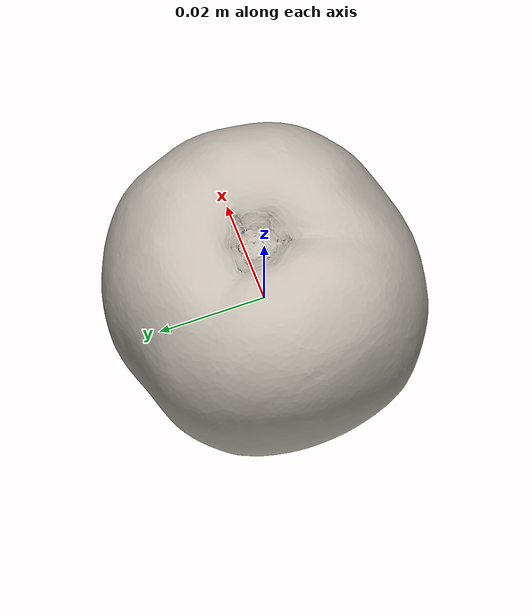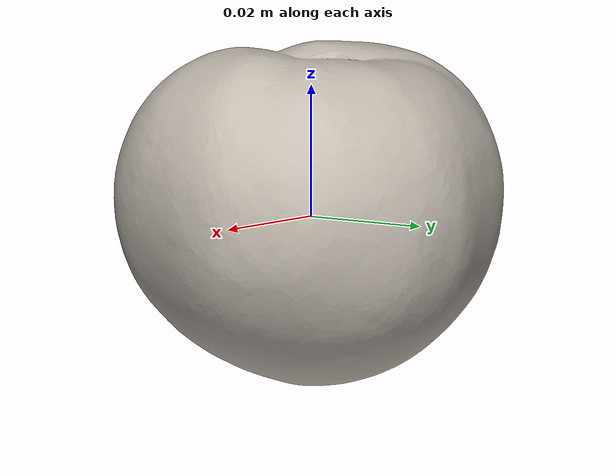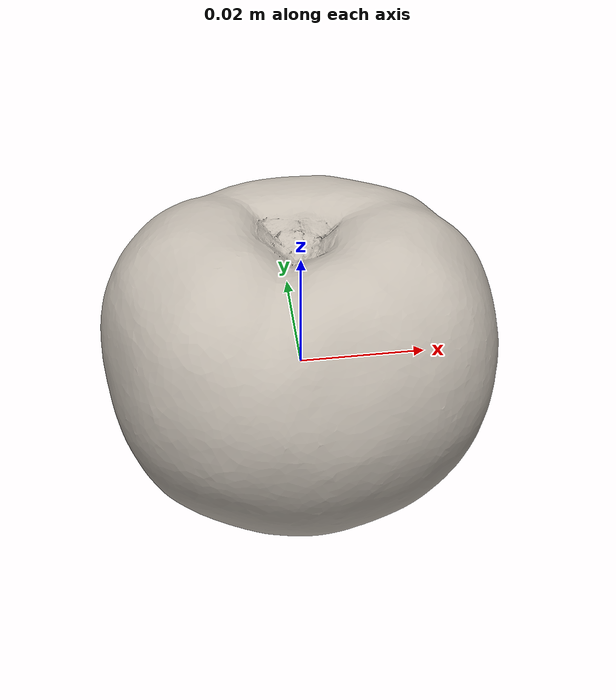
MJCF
<mujoco model="tomato_3">
  <asset>
    <texture file="/home/abhiram03/Desktop/mimicgen/robosuite-kitchen/robosuite/models/assets/textures/ceramic.png" name="tex-tomato_3" type="2d"/>
    <material name="tomato_3" reflectance="0.5" texrepeat="1 1" texture="tex-tomato_3" texuniform="false"/>
    <mesh file="visual/model_normalized_0.obj" name="model_normalized_0_vis" scale="0.06000000000000002 0.06000000000000002 0.06000000000000002" refquat="1.0 0.0 0.0 0.0"/>
    <mesh file="collision/model_normalized_collision_13.obj" name="model_normalized_collision_13._coll" scale="0.06000000000000002 0.06000000000000002 0.06000000000000002" refquat="1.0 0.0 0.0 0.0"/>
    <mesh file="collision/model_normalized_collision_15.obj" name="model_normalized_collision_15._coll" scale="0.06000000000000002 0.06000000000000002 0.06000000000000002" refquat="1.0 0.0 0.0 0.0"/>
    <mesh file="collision/model_normalized_collision_10.obj" name="model_normalized_collision_10._coll" scale="0.06000000000000002 0.06000000000000002 0.06000000000000002" refquat="1.0 0.0 0.0 0.0"/>
    <mesh file="collision/model_normalized_collision_26.obj" name="model_normalized_collision_26._coll" scale="0.06000000000000002 0.06000000000000002 0.06000000000000002" refquat="1.0 0.0 0.0 0.0"/>
    <mesh file="collision/model_normalized_collision_25.obj" name="model_normalized_collision_25._coll" scale="0.06000000000000002 0.06000000000000002 0.06000000000000002" refquat="1.0 0.0 0.0 0.0"/>
    <mesh file="collision/model_normalized_collision_5.obj" name="model_normalized_collision_5._coll" scale="0.06000000000000002 0.06000000000000002 0.06000000000000002" refquat="1.0 0.0 0.0 0.0"/>
    <mesh file="collision/model_normalized_collision_31.obj" name="model_normalized_collision_31._coll" scale="0.06000000000000002 0.06000000000000002 0.06000000000000002" refquat="1.0 0.0 0.0 0.0"/>
    <mesh file="collision/model_normalized_collision_3.obj" name="model_normalized_collision_3._coll" scale="0.06000000000000002 0.06000000000000002 0.06000000000000002" refquat="1.0 0.0 0.0 0.0"/>
    <mesh file="collision/model_normalized_collision_14.obj" name="model_normalized_collision_14._coll" scale="0.06000000000000002 0.06000000000000002 0.06000000000000002" refquat="1.0 0.0 0.0 0.0"/>
    <mesh file="collision/model_normalized_collision_28.obj" name="model_normalized_collision_28._coll" scale="0.06000000000000002 0.06000000000000002 0.06000000000000002" refquat="1.0 0.0 0.0 0.0"/>
    <mesh file="collision/model_normalized_collision_11.obj" name="model_normalized_collision_11._coll" scale="0.06000000000000002 0.06000000000000002 0.06000000000000002" refquat="1.0 0.0 0.0 0.0"/>
    <mesh file="collision/model_normalized_collision_29.obj" name="model_normalized_collision_29._coll" scale="0.06000000000000002 0.06000000000000002 0.06000000000000002" refquat="1.0 0.0 0.0 0.0"/>
    <mesh file="collision/model_normalized_collision_24.obj" name="model_normalized_collision_24._coll" scale="0.06000000000000002 0.06000000000000002 0.06000000000000002" refquat="1.0 0.0 0.0 0.0"/>
    <mesh file="collision/model_normalized_collision_1.obj" name="model_normalized_collision_1._coll" scale="0.06000000000000002 0.06000000000000002 0.06000000000000002" refquat="1.0 0.0 0.0 0.0"/>
    <mesh file="collision/model_normalized_collision_0.obj" name="model_normalized_collision_0._coll" scale="0.06000000000000002 0.06000000000000002 0.06000000000000002" refquat="1.0 0.0 0.0 0.0"/>
    <mesh file="collision/model_normalized_collision_27.obj" name="model_normalized_collision_27._coll" scale="0.06000000000000002 0.06000000000000002 0.06000000000000002" refquat="1.0 0.0 0.0 0.0"/>
    <mesh file="collision/model_normalized_collision_9.obj" name="model_normalized_collision_9._coll" scale="0.06000000000000002 0.06000000000000002 0.06000000000000002" refquat="1.0 0.0 0.0 0.0"/>
    <mesh file="collision/model_normalized_collision_19.obj" name="model_normalized_collision_19._coll" scale="0.06000000000000002 0.06000000000000002 0.06000000000000002" refquat="1.0 0.0 0.0 0.0"/>
    <mesh file="collision/model_normalized_collision_21.obj" name="model_normalized_collision_21._coll" scale="0.06000000000000002 0.06000000000000002 0.06000000000000002" refquat="1.0 0.0 0.0 0.0"/>
    <mesh file="collision/model_normalized_collision_30.obj" name="model_normalized_collision_30._coll" scale="0.06000000000000002 0.06000000000000002 0.06000000000000002" refquat="1.0 0.0 0.0 0.0"/>
    <mesh file="collision/model_normalized_collision_20.obj" name="model_normalized_collision_20._coll" scale="0.06000000000000002 0.06000000000000002 0.06000000000000002" refquat="1.0 0.0 0.0 0.0"/>
    <mesh file="collision/model_normalized_collision_2.obj" name="model_normalized_collision_2._coll" scale="0.06000000000000002 0.06000000000000002 0.06000000000000002" refquat="1.0 0.0 0.0 0.0"/>
    <mesh file="collision/model_normalized_collision_7.obj" name="model_normalized_collision_7._coll" scale="0.06000000000000002 0.06000000000000002 0.06000000000000002" refquat="1.0 0.0 0.0 0.0"/>
    <mesh file="collision/model_normalized_collision_22.obj" name="model_normalized_collision_22._coll" scale="0.06000000000000002 0.06000000000000002 0.06000000000000002" refquat="1.0 0.0 0.0 0.0"/>
    <mesh file="collision/model_normalized_collision_16.obj" name="model_normalized_collision_16._coll" scale="0.06000000000000002 0.06000000000000002 0.06000000000000002" refquat="1.0 0.0 0.0 0.0"/>
    <mesh file="collision/model_normalized_collision_8.obj" name="model_normalized_collision_8._coll" scale="0.06000000000000002 0.06000000000000002 0.06000000000000002" refquat="1.0 0.0 0.0 0.0"/>
    <mesh file="collision/model_normalized_collision_6.obj" name="model_normalized_collision_6._coll" scale="0.06000000000000002 0.06000000000000002 0.06000000000000002" refquat="1.0 0.0 0.0 0.0"/>
    <mesh file="collision/model_normalized_collision_18.obj" name="model_normalized_collision_18._coll" scale="0.06000000000000002 0.06000000000000002 0.06000000000000002" refquat="1.0 0.0 0.0 0.0"/>
    <mesh file="collision/model_normalized_collision_17.obj" name="model_normalized_collision_17._coll" scale="0.06000000000000002 0.06000000000000002 0.06000000000000002" refquat="1.0 0.0 0.0 0.0"/>
    <mesh file="collision/model_normalized_collision_12.obj" name="model_normalized_collision_12._coll" scale="0.06000000000000002 0.06000000000000002 0.06000000000000002" refquat="1.0 0.0 0.0 0.0"/>
    <mesh file="collision/model_normalized_collision_4.obj" name="model_normalized_collision_4._coll" scale="0.06000000000000002 0.06000000000000002 0.06000000000000002" refquat="1.0 0.0 0.0 0.0"/>
    <mesh file="collision/model_normalized_collision_23.obj" name="model_normalized_collision_23._coll" scale="0.06000000000000002 0.06000000000000002 0.06000000000000002" refquat="1.0 0.0 0.0 0.0"/>
    <texture type="2d" name="7098fe137468_tomato__3d_asset_0__texture_kd" file="visual/7098fe137468_tomato__3d_asset_0__texture_kd.png"/>
    <material name="Material_0" texture="7098fe137468_tomato__3d_asset_0__texture_kd" specular="0.5" shininess="0.5"/>
  </asset>
  <worldbody>
    <body>
      <body name="object">
        <geom solimp="0.998 0.998 0.001" solref="0.001 1" density="100" friction="0.95 0.3 0.1" type="mesh" mesh="model_normalized_0_vis" conaffinity="0" contype="0" group="1" material="Material_0"/>
        <geom solimp="0.998 0.998 0.001" solref="0.001 1" density="100" friction="0.95 0.3 0.1" type="mesh" mesh="model_normalized_collision_13._coll" group="0" rgba="0.8 0.8 0.8 0.0"/>
        <geom solimp="0.998 0.998 0.001" solref="0.001 1" density="100" friction="0.95 0.3 0.1" type="mesh" mesh="model_normalized_collision_15._coll" group="0" rgba="0.8 0.8 0.8 0.0"/>
        <geom solimp="0.998 0.998 0.001" solref="0.001 1" density="100" friction="0.95 0.3 0.1" type="mesh" mesh="model_normalized_collision_10._coll" group="0" rgba="0.8 0.8 0.8 0.0"/>
        <geom solimp="0.998 0.998 0.001" solref="0.001 1" density="100" friction="0.95 0.3 0.1" type="mesh" mesh="model_normalized_collision_26._coll" group="0" rgba="0.8 0.8 0.8 0.0"/>
        <geom solimp="0.998 0.998 0.001" solref="0.001 1" density="100" friction="0.95 0.3 0.1" type="mesh" mesh="model_normalized_collision_25._coll" group="0" rgba="0.8 0.8 0.8 0.0"/>
        <geom solimp="0.998 0.998 0.001" solref="0.001 1" density="100" friction="0.95 0.3 0.1" type="mesh" mesh="model_normalized_collision_5._coll" group="0" rgba="0.8 0.8 0.8 0.0"/>
        <geom solimp="0.998 0.998 0.001" solref="0.001 1" density="100" friction="0.95 0.3 0.1" type="mesh" mesh="model_normalized_collision_31._coll" group="0" rgba="0.8 0.8 0.8 0.0"/>
        <geom solimp="0.998 0.998 0.001" solref="0.001 1" density="100" friction="0.95 0.3 0.1" type="mesh" mesh="model_normalized_collision_3._coll" group="0" rgba="0.8 0.8 0.8 0.0"/>
        <geom solimp="0.998 0.998 0.001" solref="0.001 1" density="100" friction="0.95 0.3 0.1" type="mesh" mesh="model_normalized_collision_14._coll" group="0" rgba="0.8 0.8 0.8 0.0"/>
        <geom solimp="0.998 0.998 0.001" solref="0.001 1" density="100" friction="0.95 0.3 0.1" type="mesh" mesh="model_normalized_collision_28._coll" group="0" rgba="0.8 0.8 0.8 0.0"/>
        <geom solimp="0.998 0.998 0.001" solref="0.001 1" density="100" friction="0.95 0.3 0.1" type="mesh" mesh="model_normalized_collision_11._coll" group="0" rgba="0.8 0.8 0.8 0.0"/>
        <geom solimp="0.998 0.998 0.001" solref="0.001 1" density="100" friction="0.95 0.3 0.1" type="mesh" mesh="model_normalized_collision_29._coll" group="0" rgba="0.8 0.8 0.8 0.0"/>
        <geom solimp="0.998 0.998 0.001" solref="0.001 1" density="100" friction="0.95 0.3 0.1" type="mesh" mesh="model_normalized_collision_24._coll" group="0" rgba="0.8 0.8 0.8 0.0"/>
        <geom solimp="0.998 0.998 0.001" solref="0.001 1" density="100" friction="0.95 0.3 0.1" type="mesh" mesh="model_normalized_collision_1._coll" group="0" rgba="0.8 0.8 0.8 0.0"/>
        <geom solimp="0.998 0.998 0.001" solref="0.001 1" density="100" friction="0.95 0.3 0.1" type="mesh" mesh="model_normalized_collision_0._coll" group="0" rgba="0.8 0.8 0.8 0.0"/>
        <geom solimp="0.998 0.998 0.001" solref="0.001 1" density="100" friction="0.95 0.3 0.1" type="mesh" mesh="model_normalized_collision_27._coll" group="0" rgba="0.8 0.8 0.8 0.0"/>
        <geom solimp="0.998 0.998 0.001" solref="0.001 1" density="100" friction="0.95 0.3 0.1" type="mesh" mesh="model_normalized_collision_9._coll" group="0" rgba="0.8 0.8 0.8 0.0"/>
        <geom solimp="0.998 0.998 0.001" solref="0.001 1" density="100" friction="0.95 0.3 0.1" type="mesh" mesh="model_normalized_collision_19._coll" group="0" rgba="0.8 0.8 0.8 0.0"/>
        <geom solimp="0.998 0.998 0.001" solref="0.001 1" density="100" friction="0.95 0.3 0.1" type="mesh" mesh="model_normalized_collision_21._coll" group="0" rgba="0.8 0.8 0.8 0.0"/>
        <geom solimp="0.998 0.998 0.001" solref="0.001 1" density="100" friction="0.95 0.3 0.1" type="mesh" mesh="model_normalized_collision_30._coll" group="0" rgba="0.8 0.8 0.8 0.0"/>
        <geom solimp="0.998 0.998 0.001" solref="0.001 1" density="100" friction="0.95 0.3 0.1" type="mesh" mesh="model_normalized_collision_20._coll" group="0" rgba="0.8 0.8 0.8 0.0"/>
        <geom solimp="0.998 0.998 0.001" solref="0.001 1" density="100" friction="0.95 0.3 0.1" type="mesh" mesh="model_normalized_collision_2._coll" group="0" rgba="0.8 0.8 0.8 0.0"/>
        <geom solimp="0.998 0.998 0.001" solref="0.001 1" density="100" friction="0.95 0.3 0.1" type="mesh" mesh="model_normalized_collision_7._coll" group="0" rgba="0.8 0.8 0.8 0.0"/>
        <geom solimp="0.998 0.998 0.001" solref="0.001 1" density="100" friction="0.95 0.3 0.1" type="mesh" mesh="model_normalized_collision_22._coll" group="0" rgba="0.8 0.8 0.8 0.0"/>
        <geom solimp="0.998 0.998 0.001" solref="0.001 1" density="100" friction="0.95 0.3 0.1" type="mesh" mesh="model_normalized_collision_16._coll" group="0" rgba="0.8 0.8 0.8 0.0"/>
        <geom solimp="0.998 0.998 0.001" solref="0.001 1" density="100" friction="0.95 0.3 0.1" type="mesh" mesh="model_normalized_collision_8._coll" group="0" rgba="0.8 0.8 0.8 0.0"/>
        <geom solimp="0.998 0.998 0.001" solref="0.001 1" density="100" friction="0.95 0.3 0.1" type="mesh" mesh="model_normalized_collision_6._coll" group="0" rgba="0.8 0.8 0.8 0.0"/>
        <geom solimp="0.998 0.998 0.001" solref="0.001 1" density="100" friction="0.95 0.3 0.1" type="mesh" mesh="model_normalized_collision_18._coll" group="0" rgba="0.8 0.8 0.8 0.0"/>
        <geom solimp="0.998 0.998 0.001" solref="0.001 1" density="100" friction="0.95 0.3 0.1" type="mesh" mesh="model_normalized_collision_17._coll" group="0" rgba="0.8 0.8 0.8 0.0"/>
        <geom solimp="0.998 0.998 0.001" solref="0.001 1" density="100" friction="0.95 0.3 0.1" type="mesh" mesh="model_normalized_collision_12._coll" group="0" rgba="0.8 0.8 0.8 0.0"/>
        <geom solimp="0.998 0.998 0.001" solref="0.001 1" density="100" friction="0.95 0.3 0.1" type="mesh" mesh="model_normalized_collision_4._coll" group="0" rgba="0.8 0.8 0.8 0.0"/>
        <geom solimp="0.998 0.998 0.001" solref="0.001 1" density="100" friction="0.95 0.3 0.1" type="mesh" mesh="model_normalized_collision_23._coll" group="0" rgba="0.8 0.8 0.8 0.0"/>
      </body>
      <site rgba="0 0 0 0" size="0.005" pos="-6.785039999999967e-05 6.55847999999998e-05 -0.03045454500000001" name="bottom_site"/>
      <site rgba="0 0 0 0" size="0.005" pos="-6.785039999999967e-05 6.55847999999998e-05 0.030454543800000015" name="top_site"/>
      <site rgba="0 0 0 0" size="0.005" pos="0.026295785400000014 0.02688376560000001 -5.999999996841867e-10" name="horizontal_radius_site"/>
    </body>
  </worldbody>
</mujoco>
